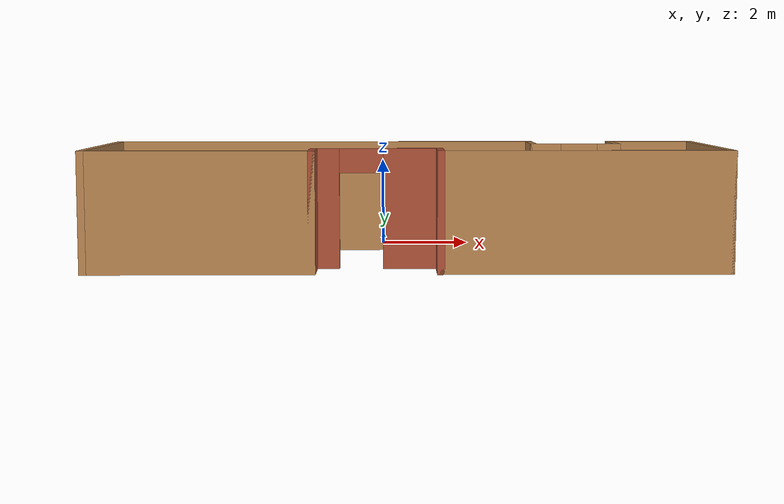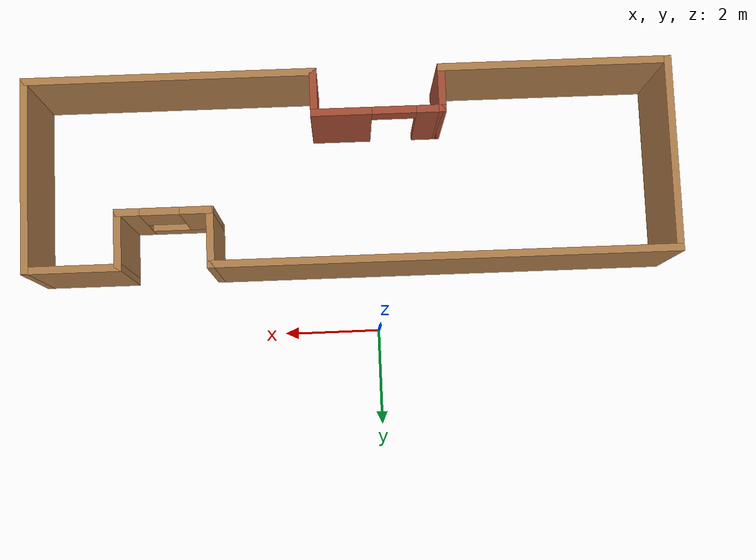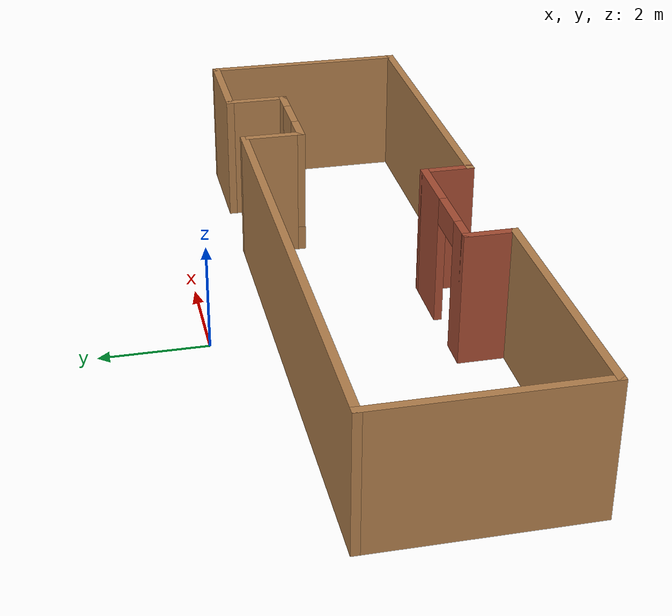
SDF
<?xml version='1.0'?>
<sdf version='1.6'>
  <model name='simple_house'>
    <pose frame=''>0.525 -2.5825 0 0 -0 0</pose>
    <link name='Wall_0'>
      <collision name='Wall_0_Collision'>
        <geometry>
          <box>
            <size>4 0.15 2.5</size>
          </box>
        </geometry>
        <pose frame=''>0 0 1.25 0 -0 0</pose>
      </collision>
      <visual name='Wall_0_Visual'>
        <pose frame=''>0 0 1.25 0 -0 0</pose>
        <geometry>
          <box>
            <size>4 0.15 2.5</size>
          </box>
        </geometry>
        <material>
          <script>
            <uri>file://media/materials/scripts/gazebo.material</uri>
            <name>Gazebo/Wood</name>
          </script>
          <ambient>1 1 1 1</ambient>
        </material>
        <meta>
          <layer>0</layer>
        </meta>
      </visual>
      <pose frame=''>-6.525 -0.5825 0 0 -0 -1.5708</pose>
    </link>
    <link name='Wall_1'>
      <collision name='Wall_1_Collision'>
        <geometry>
          <box>
            <size>4.75 0.15 2.5</size>
          </box>
        </geometry>
        <pose frame=''>0 0 1.25 0 -0 0</pose>
      </collision>
      <visual name='Wall_1_Visual'>
        <pose frame=''>0 0 1.25 0 -0 0</pose>
        <geometry>
          <box>
            <size>4.75 0.15 2.5</size>
          </box>
        </geometry>
        <material>
          <script>
            <uri>file://media/materials/scripts/gazebo.material</uri>
            <name>Gazebo/Wood</name>
          </script>
          <ambient>1 1 1 1</ambient>
        </material>
        <meta>
          <layer>0</layer>
        </meta>
      </visual>
      <pose frame=''>-4.225 -2.5075 0 0 -0 0</pose>
    </link>
    <link name='Wall_10'>
      <collision name='Wall_10_Collision'>
        <geometry>
          <box>
            <size>1.25 0.15 2.5</size>
          </box>
        </geometry>
        <pose frame=''>0 0 1.25 0 -0 0</pose>
      </collision>
      <visual name='Wall_10_Visual'>
        <pose frame=''>0 0 1.25 0 -0 0</pose>
        <geometry>
          <box>
            <size>1.25 0.15 2.5</size>
          </box>
        </geometry>
        <material>
          <script>
            <uri>file://media/materials/scripts/gazebo.material</uri>
            <name>Gazebo/Wood</name>
          </script>
          <ambient>1 1 1 1</ambient>
        </material>
        <meta>
          <layer>0</layer>
        </meta>
      </visual>
      <pose frame=''>2.825 0.7925 0 0 -0 1.5708</pose>
    </link>
    <link name='Wall_11'>
      <collision name='Wall_11_Collision'>
        <geometry>
          <box>
            <size>9.5 0.15 2.5</size>
          </box>
        </geometry>
        <pose frame=''>0 0 1.25 0 -0 0</pose>
      </collision>
      <visual name='Wall_11_Visual'>
        <pose frame=''>0 0 1.25 0 -0 0</pose>
        <geometry>
          <box>
            <size>9.5 0.15 2.5</size>
          </box>
        </geometry>
        <material>
          <script>
            <uri>file://media/materials/scripts/gazebo.material</uri>
            <name>Gazebo/Wood</name>
          </script>
          <ambient>1 1 1 1</ambient>
        </material>
        <meta>
          <layer>0</layer>
        </meta>
      </visual>
      <pose frame=''>-1.85 1.3425 0 0 -0 3.14159</pose>
    </link>
    <link name='Wall_2'>
      <collision name='Wall_2_Collision'>
        <geometry>
          <box>
            <size>1 0.15 2.5</size>
          </box>
        </geometry>
        <pose frame=''>0 0 1.25 0 -0 0</pose>
      </collision>
      <visual name='Wall_2_Visual'>
        <pose frame=''>0 0 1.25 0 -0 0</pose>
        <geometry>
          <box>
            <size>1 0.15 2.5</size>
          </box>
        </geometry>
        <material>
          <script>
            <uri>file://media/materials/scripts/gazebo.material</uri>
            <name>Gazebo/Bricks</name>
          </script>
          <ambient>1 1 1 1</ambient>
        </material>
        <meta>
          <layer>0</layer>
        </meta>
      </visual>
      <pose frame=''>-1.925 -2.0825 0 0 -0 1.5708</pose>
    </link>
    <link name='Wall_3'>
      <pose frame=''>-0.625 -1.6575 0 0 -0 0</pose>
      <visual name='Wall_3_Visual_0'>
        <pose frame=''>-1.0725 0 1.25 0 -0 0</pose>
        <geometry>
          <box>
            <size>0.605 0.15 2.5</size>
          </box>
        </geometry>
        <material>
          <script>
            <uri>file://media/materials/scripts/gazebo.material</uri>
            <name>Gazebo/Bricks</name>
          </script>
          <ambient>1 1 1 1</ambient>
        </material>
        <meta>
          <layer>0</layer>
        </meta>
      </visual>
      <collision name='Wall_3_Collision_0'>
        <geometry>
          <box>
            <size>0.605 0.15 2.5</size>
          </box>
        </geometry>
        <pose frame=''>-1.0725 0 1.25 0 -0 0</pose>
      </collision>
      <visual name='Wall_3_Visual_1'>
        <pose frame=''>0.7525 0 1.25 0 -0 0</pose>
        <geometry>
          <box>
            <size>1.245 0.15 2.5</size>
          </box>
        </geometry>
        <material>
          <script>
            <uri>file://media/materials/scripts/gazebo.material</uri>
            <name>Gazebo/Bricks</name>
          </script>
          <ambient>1 1 1 1</ambient>
        </material>
        <meta>
          <layer>0</layer>
        </meta>
      </visual>
      <collision name='Wall_3_Collision_1'>
        <geometry>
          <box>
            <size>1.245 0.15 2.5</size>
          </box>
        </geometry>
        <pose frame=''>0.7525 0 1.25 0 -0 0</pose>
      </collision>
      <visual name='Wall_3_Visual_2'>
        <pose frame=''>-0.32 0 2.25 0 -0 0</pose>
        <geometry>
          <box>
            <size>0.9 0.15 0.5</size>
          </box>
        </geometry>
        <material>
          <script>
            <uri>file://media/materials/scripts/gazebo.material</uri>
            <name>Gazebo/Bricks</name>
          </script>
          <ambient>1 1 1 1</ambient>
        </material>
        <meta>
          <layer>0</layer>
        </meta>
      </visual>
      <collision name='Wall_3_Collision_2'>
        <geometry>
          <box>
            <size>0.9 0.15 0.5</size>
          </box>
        </geometry>
        <pose frame=''>-0.32 0 2.25 0 -0 0</pose>
      </collision>
    </link>
    <link name='Wall_4'>
      <collision name='Wall_4_Collision'>
        <geometry>
          <box>
            <size>1 0.15 2.5</size>
          </box>
        </geometry>
        <pose frame=''>0 0 1.25 0 -0 0</pose>
      </collision>
      <visual name='Wall_4_Visual'>
        <pose frame=''>0 0 1.25 0 -0 0</pose>
        <geometry>
          <box>
            <size>1 0.15 2.5</size>
          </box>
        </geometry>
        <material>
          <script>
            <uri>file://media/materials/scripts/gazebo.material</uri>
            <name>Gazebo/Bricks</name>
          </script>
          <ambient>1 1 1 1</ambient>
        </material>
        <meta>
          <layer>0</layer>
        </meta>
      </visual>
      <pose frame=''>0.675 -2.0825 0 0 -0 -1.5708</pose>
    </link>
    <link name='Wall_5'>
      <collision name='Wall_5_Collision'>
        <geometry>
          <box>
            <size>6 0.15 2.5</size>
          </box>
        </geometry>
        <pose frame=''>0 0 1.25 0 -0 0</pose>
      </collision>
      <visual name='Wall_5_Visual'>
        <pose frame=''>0 0 1.25 0 -0 0</pose>
        <geometry>
          <box>
            <size>6 0.15 2.5</size>
          </box>
        </geometry>
        <material>
          <script>
            <uri>file://media/materials/scripts/gazebo.material</uri>
            <name>Gazebo/Wood</name>
          </script>
          <ambient>1 1 1 1</ambient>
        </material>
        <meta>
          <layer>0</layer>
        </meta>
      </visual>
      <pose frame=''>3.6 -2.5075 0 0 -0 0</pose>
    </link>
    <link name='Wall_6'>
      <collision name='Wall_6_Collision'>
        <geometry>
          <box>
            <size>4 0.15 2.5</size>
          </box>
        </geometry>
        <pose frame=''>0 0 1.25 0 -0 0</pose>
      </collision>
      <visual name='Wall_6_Visual'>
        <pose frame=''>0 0 1.25 0 -0 0</pose>
        <geometry>
          <box>
            <size>4 0.15 2.5</size>
          </box>
        </geometry>
        <material>
          <script>
            <uri>file://media/materials/scripts/gazebo.material</uri>
            <name>Gazebo/Wood</name>
          </script>
          <ambient>1 1 1 1</ambient>
        </material>
        <meta>
          <layer>0</layer>
        </meta>
      </visual>
      <pose frame=''>6.525 -0.5825 0 0 -0 1.5708</pose>
    </link>
    <link name='Wall_7'>
      <collision name='Wall_7_Collision'>
        <geometry>
          <box>
            <size>2 0.15 2.5</size>
          </box>
        </geometry>
        <pose frame=''>0 0 1.25 0 -0 0</pose>
      </collision>
      <visual name='Wall_7_Visual'>
        <pose frame=''>0 0 1.25 0 -0 0</pose>
        <geometry>
          <box>
            <size>2 0.15 2.5</size>
          </box>
        </geometry>
        <material>
          <script>
            <uri>file://media/materials/scripts/gazebo.material</uri>
            <name>Gazebo/Wood</name>
          </script>
          <ambient>1 1 1 1</ambient>
        </material>
        <meta>
          <layer>0</layer>
        </meta>
      </visual>
      <pose frame=''>5.6 1.3425 0 0 -0 3.14159</pose>
    </link>
    <link name='Wall_8'>
      <collision name='Wall_8_Collision'>
        <geometry>
          <box>
            <size>1.25 0.15 2.5</size>
          </box>
        </geometry>
        <pose frame=''>0 0 1.25 0 -0 0</pose>
      </collision>
      <visual name='Wall_8_Visual'>
        <pose frame=''>0 0 1.25 0 -0 0</pose>
        <geometry>
          <box>
            <size>1.25 0.15 2.5</size>
          </box>
        </geometry>
        <material>
          <script>
            <uri>file://media/materials/scripts/gazebo.material</uri>
            <name>Gazebo/Wood</name>
          </script>
          <ambient>1 1 1 1</ambient>
        </material>
        <meta>
          <layer>0</layer>
        </meta>
      </visual>
      <pose frame=''>4.675 0.7925 0 0 -0 -1.5708</pose>
    </link>
    <link name='Wall_9'>
      <pose frame=''>3.75 0.2425 0 0 -0 3.14159</pose>
      <visual name='Wall_9_Visual_0'>
        <pose frame=''>-0.7375 0 1.25 0 -0 0</pose>
        <geometry>
          <box>
            <size>0.525 0.15 2.5</size>
          </box>
        </geometry>
        <material>
          <script>
            <uri>file://media/materials/scripts/gazebo.material</uri>
            <name>Gazebo/Wood</name>
          </script>
          <ambient>1 1 1 1</ambient>
        </material>
        <meta>
          <layer>0</layer>
        </meta>
      </visual>
      <collision name='Wall_9_Collision_0'>
        <geometry>
          <box>
            <size>0.525 0.15 2.5</size>
          </box>
        </geometry>
        <pose frame=''>-0.7375 0 1.25 0 -0 0</pose>
      </collision>
      <visual name='Wall_9_Visual_1'>
        <pose frame=''>0.2625 0 0.25 0 -0 0</pose>
        <geometry>
          <box>
            <size>1.475 0.15 0.5</size>
          </box>
        </geometry>
        <material>
          <script>
            <uri>file://media/materials/scripts/gazebo.material</uri>
            <name>Gazebo/Wood</name>
          </script>
          <ambient>1 1 1 1</ambient>
        </material>
        <meta>
          <layer>0</layer>
        </meta>
      </visual>
      <collision name='Wall_9_Collision_1'>
        <geometry>
          <box>
            <size>1.475 0.15 0.5</size>
          </box>
        </geometry>
        <pose frame=''>0.2625 0 0.25 0 -0 0</pose>
      </collision>
      <visual name='Wall_9_Visual_2'>
        <pose frame=''>0.6625 0 1.5 0 -0 0</pose>
        <geometry>
          <box>
            <size>0.675 0.15 2</size>
          </box>
        </geometry>
        <material>
          <script>
            <uri>file://media/materials/scripts/gazebo.material</uri>
            <name>Gazebo/Wood</name>
          </script>
          <ambient>1 1 1 1</ambient>
        </material>
        <meta>
          <layer>0</layer>
        </meta>
      </visual>
      <collision name='Wall_9_Collision_2'>
        <geometry>
          <box>
            <size>0.675 0.15 2</size>
          </box>
        </geometry>
        <pose frame=''>0.6625 0 1.5 0 -0 0</pose>
      </collision>
      <visual name='Wall_9_Visual_3'>
        <pose frame=''>-0.075 0 1.9 0 -0 0</pose>
        <geometry>
          <box>
            <size>0.8 0.15 1.2</size>
          </box>
        </geometry>
        <material>
          <script>
            <uri>file://media/materials/scripts/gazebo.material</uri>
            <name>Gazebo/Wood</name>
          </script>
          <ambient>1 1 1 1</ambient>
        </material>
        <meta>
          <layer>0</layer>
        </meta>
      </visual>
      <collision name='Wall_9_Collision_3'>
        <geometry>
          <box>
            <size>0.8 0.15 1.2</size>
          </box>
        </geometry>
        <pose frame=''>-0.075 0 1.9 0 -0 0</pose>
      </collision>
    </link>
    <static>1</static>
  </model>
</sdf>
